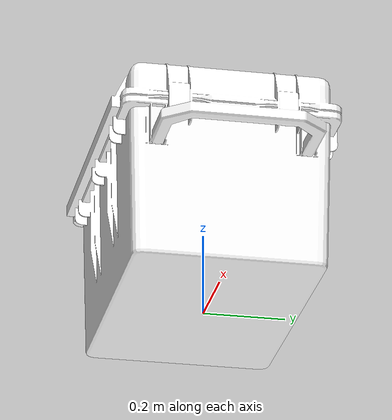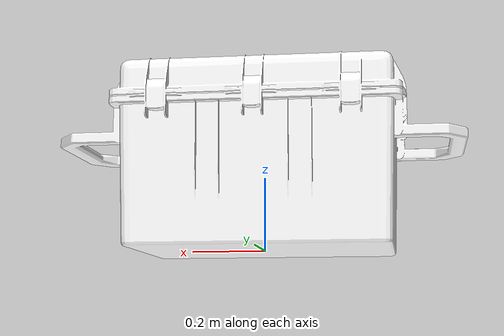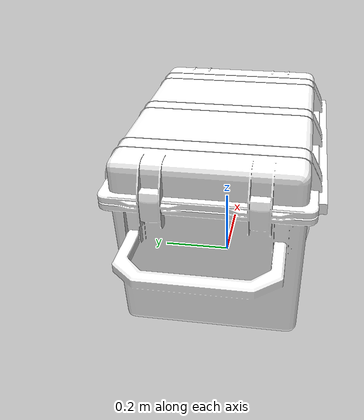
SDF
<?xml version='1.0' ?>
<sdf version="1.6">
    <model name="large_crate">
        <static>false</static>
        <link name="link">
            <inertial>
                <pose>0 0 0.25 0 0 0</pose>
                <mass>8</mass>
                <inertia>
                    <ixx>0.36485966</ixx>
                    <ixy>0.0</ixy>
                    <ixz>0.0</ixz>
                    <iyy>0.93845015</iyy>
                    <iyz>0.0</iyz>
                    <izz>0.98351090</izz>
                </inertia>
            </inertial>
            <visual name="visual">
                <geometry>
                    <mesh>
                        <uri>meshes/LargeCrate.dae</uri>
                    </mesh>
                </geometry>
                <material>
                    <diffuse>1.0 1.0 1.0</diffuse>
                    <specular>1.0 1.0 1.0</specular>
                    <pbr>
                        <metal>
                            <albedo_map>materials/textures/Crate_Albedo.jpg</albedo_map>
                            <normal_map>materials/textures/Crate_Normal.jpg</normal_map>
                            <roughness_map>materials/textures/Crate_Roughness.jpg</roughness_map>
                        </metal>
                    </pbr>
                </material>
            </visual>
            <collision name="Box007">
                <pose>0.0 0.0 0.245134 0.0 0.0 0.0</pose>
                <geometry>
                    <box>
                        <size>0.719255 0.483863 0.490267</size>
                    </box>
                </geometry>
            </collision>
            <collision name="Box008">
                <pose>0.0 0.0 0.389035 0.0 0.0 0.0</pose>
                <geometry>
                    <box>
                        <size>0.757419 0.526001 0.0499125</size>
                    </box>
                </geometry>
            </collision>
            <collision name="Box009">
                <pose>0.246876 0.255699 0.378817 1.5708 0.0 3.14159</pose>
                <geometry>
                    <box>
                        <size>0.0560224 0.105551 0.0312474</size>
                    </box>
                </geometry>
            </collision>
            <collision name="Box010">
                <pose>-0.246876 0.255699 0.378817 1.5708 0.0 3.14159</pose>
                <geometry>
                    <box>
                        <size>0.0560224 0.105551 0.0312474</size>
                    </box>
                </geometry>
            </collision>
            <collision name="Box011">
                <pose>0.0 0.255699 0.378817 1.5708 0.0 3.14159</pose>
                <geometry>
                    <box>
                        <size>0.0560224 0.105551 0.0312474</size>
                    </box>
                </geometry>
            </collision>
            <collision name="Box012">
                <pose>-0.372553 0.13 0.378817 1.5708 0.0 -1.5708</pose>
                <geometry>
                    <box>
                        <size>0.0560224 0.105551 0.0312474</size>
                    </box>
                </geometry>
            </collision>
            <collision name="Box013">
                <pose>-0.372553 -0.13 0.378817 1.5708 0.0 -1.5708</pose>
                <geometry>
                    <box>
                        <size>0.0560224 0.105551 0.0312474</size>
                    </box>
                </geometry>
            </collision>
            <collision name="Box014">
                <pose>0.372553 -0.13 0.378817 1.5708 0.0 1.5708</pose>
                <geometry>
                    <box>
                        <size>0.0560224 0.105551 0.0312474</size>
                    </box>
                </geometry>
            </collision>
            <collision name="Box015">
                <pose>0.372553 0.13 0.378817 1.5708 0.0 1.5708</pose>
                <geometry>
                    <box>
                        <size>0.0560224 0.105551 0.0312474</size>
                    </box>
                </geometry>
            </collision>
            <collision name="Box016">
                <pose>0.246876 -0.255699 0.378817 1.5708 0.0 -2.38419e-07</pose>
                <geometry>
                    <box>
                        <size>0.0560224 0.105551 0.0312474</size>
                    </box>
                </geometry>
            </collision>
            <collision name="Box017">
                <pose>-0.246876 -0.255699 0.378817 1.5708 0.0 -2.38419e-07</pose>
                <geometry>
                    <box>
                        <size>0.0560224 0.105551 0.0312474</size>
                    </box>
                </geometry>
            </collision>
            <collision name="Box018">
                <pose>0.0 -0.255699 0.378817 1.5708 0.0 -2.38419e-07</pose>
                <geometry>
                    <box>
                        <size>0.0560224 0.105551 0.0312474</size>
                    </box>
                </geometry>
            </collision>
            <collision name="Box019">
                <pose>0.0 -0.264152 0.384558 1.5708 0.0 3.14159</pose>
                <geometry>
                    <box>
                        <size>0.662 0.028538 0.0406942</size>
                    </box>
                </geometry>
            </collision>
            <collision name="Box020">
                <pose>-0.357901 0.179912 0.320486 1.5708 0.0 -1.5708</pose>
                <geometry>
                    <box>
                        <size>0.0398966 0.0969873 0.0447377</size>
                    </box>
                </geometry>
            </collision>
            <collision name="Box021">
                <pose>-0.357901 -0.179912 0.320486 1.5708 0.0 -1.5708</pose>
                <geometry>
                    <box>
                        <size>0.0398966 0.0969873 0.0447377</size>
                    </box>
                </geometry>
            </collision>
            <collision name="Box022">
                <pose>-0.520994 0.0 0.286826 1.5708 0.0 -1.5708</pose>
                <geometry>
                    <box>
                        <size>0.266316 0.0316343 0.0433154</size>
                    </box>
                </geometry>
            </collision>
            <collision name="Box023">
                <pose>-0.501567 0.151505 0.286826 1.5708 0.0 -2.26893</pose>
                <geometry>
                    <box>
                        <size>0.0810202 0.0316343 0.039417</size>
                    </box>
                </geometry>
            </collision>
            <collision name="Box024">
                <pose>-0.430842 0.179853 0.286826 1.5708 0.0 3.14159</pose>
                <geometry>
                    <box>
                        <size>0.120291 0.0316343 0.0301304</size>
                    </box>
                </geometry>
            </collision>
            <collision name="Box025">
                <pose>-0.430842 -0.179853 0.286826 1.5708 0.0 -6.51683e-07</pose>
                <geometry>
                    <box>
                        <size>0.120291 0.0316343 0.0301304</size>
                    </box>
                </geometry>
            </collision>
            <collision name="Box026">
                <pose>-0.501567 -0.151505 0.286826 1.5708 0.0 -0.872665</pose>
                <geometry>
                    <box>
                        <size>0.0810202 0.0316343 0.039417</size>
                    </box>
                </geometry>
            </collision>
            <collision name="Box027">
                <pose>0.520994 0.0 0.286826 1.5708 0.0 1.5708</pose>
                <geometry>
                    <box>
                        <size>0.266316 0.0316343 0.0433154</size>
                    </box>
                </geometry>
            </collision>
            <collision name="Box028">
                <pose>0.501568 0.151505 0.286826 1.5708 0.0 2.26893</pose>
                <geometry>
                    <box>
                        <size>0.0810202 0.0316343 0.039417</size>
                    </box>
                </geometry>
            </collision>
            <collision name="Box029">
                <pose>0.501568 -0.151505 0.286826 1.5708 0.0 0.872665</pose>
                <geometry>
                    <box>
                        <size>0.0810202 0.0316343 0.039417</size>
                    </box>
                </geometry>
            </collision>
            <collision name="Box030">
                <pose>0.430842 -0.179853 0.286826 1.5708 0.0 -6.51683e-07</pose>
                <geometry>
                    <box>
                        <size>0.120291 0.0316343 0.0301304</size>
                    </box>
                </geometry>
            </collision>
            <collision name="Box031">
                <pose>0.430842 0.179853 0.286826 1.5708 0.0 3.14159</pose>
                <geometry>
                    <box>
                        <size>0.120291 0.0316343 0.0301304</size>
                    </box>
                </geometry>
            </collision>
        </link>
    </model>
</sdf>
